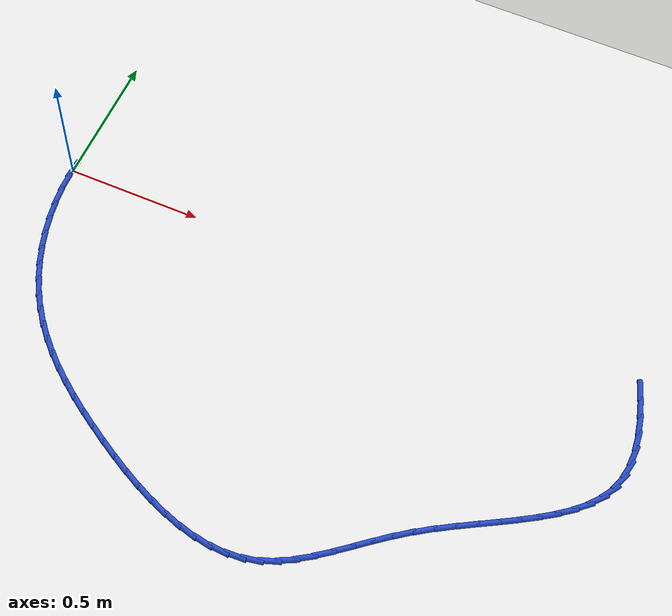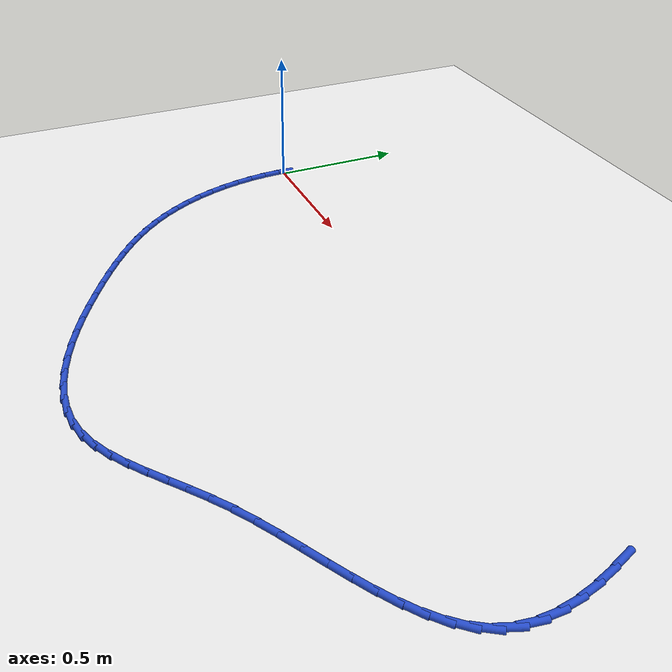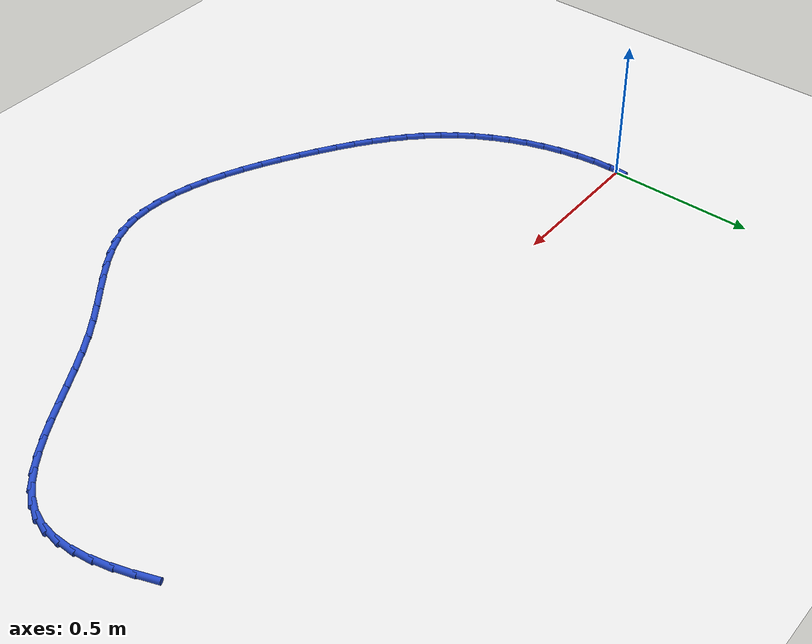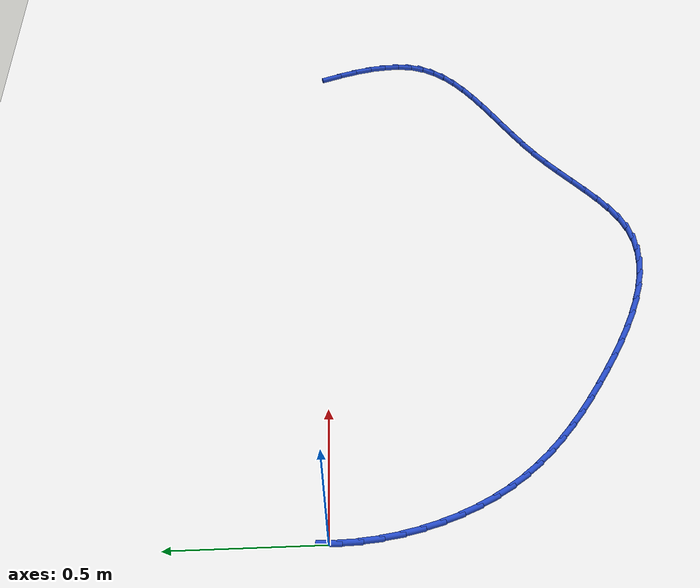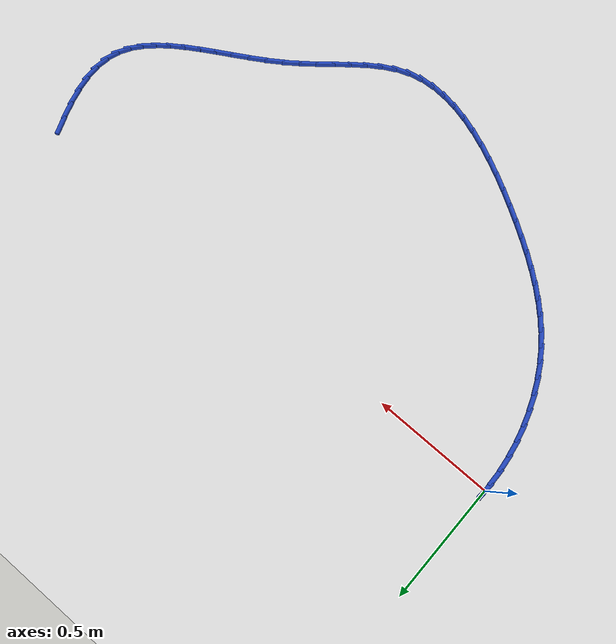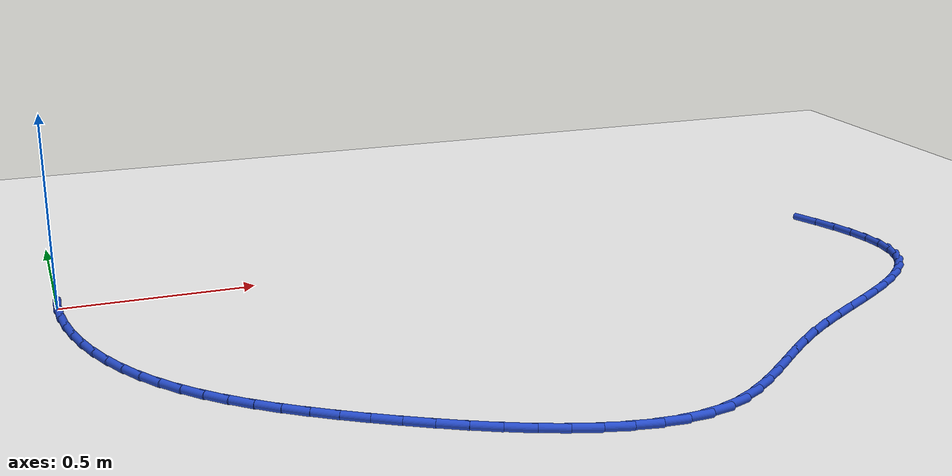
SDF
<sdf version="1.6">
 <world name="default">
  <model name="ground_plane">
   <static>1</static>
   <link name="link">
    <collision name="collision">
     <geometry><plane><normal>0 0 1</normal><size>100 100</size></plane></geometry>
     <surface><friction><ode><mu>100</mu><mu2>50</mu2></ode></friction></surface>
    </collision>
    <visual name="visual">
     <cast_shadows>0</cast_shadows>
     <geometry><plane><normal>0 0 1</normal><size>100 100</size></plane></geometry>
     <material>
      <script><uri>file://media/materials/scripts/gazebo.material</uri><name>Gazebo/WhiteGlow</name></script>
     </material>
    </visual>
   </link>
  </model>
  <model name="line">
   <link name="link_0">
    <pose>-3.122502256758253e-17 -4.163336342344337e-17 0.01 0 1.57 1.5230934056783816</pose>
    <collision name="collision">
     <geometry><cylinder><radius>0.01</radius><length>0.08</length></cylinder></geometry>
    </collision>
    <visual name="visual">
     <material>
      <script><name>Gazebo/Blue</name><uri>file://media/materials/scripts/gazebo.material</uri></script>
     </material>
     <geometry><cylinder><radius>0.01</radius><length>0.08</length></cylinder></geometry>
    </visual>
   </link>
   <link name="link_55">
    <pose>2.1920932714726185 -0.012998556710253323 0.01 0 1.57 -1.2213491102728755</pose>
    <collision name="collision">
     <geometry><cylinder><radius>0.01</radius><length>0.08</length></cylinder></geometry>
    </collision>
    <visual name="visual">
     <material>
      <script><name>Gazebo/Blue</name><uri>file://media/materials/scripts/gazebo.material</uri></script>
     </material>
     <geometry><cylinder><radius>0.01</radius><length>0.08</length></cylinder></geometry>
    </visual>
   </link>
   <link name="link_56">
    <pose>2.2150106348134755 -0.07588885896064891 0.01 0 1.57 -1.277937678296772</pose>
    <collision name="collision">
     <geometry><cylinder><radius>0.01</radius><length>0.08</length></cylinder></geometry>
    </collision>
    <visual name="visual">
     <material>
      <script><name>Gazebo/Blue</name><uri>file://media/materials/scripts/gazebo.material</uri></script>
     </material>
     <geometry><cylinder><radius>0.01</radius><length>0.08</length></cylinder></geometry>
    </visual>
   </link>
   <link name="link_57">
    <pose>2.2335138346364487 -0.13725350512756754 0.01 0 1.57 -1.3535788627433354</pose>
    <collision name="collision">
     <geometry><cylinder><radius>0.01</radius><length>0.08</length></cylinder></geometry>
    </collision>
    <visual name="visual">
     <material>
      <script><name>Gazebo/Blue</name><uri>file://media/materials/scripts/gazebo.material</uri></script>
     </material>
     <geometry><cylinder><radius>0.01</radius><length>0.08</length></cylinder></geometry>
    </visual>
   </link>
   <link name="link_58">
    <pose>2.2466319026974517 -0.19669208541015873 0.01 0 1.57 -1.45294680043807</pose>
    <collision name="collision">
     <geometry><cylinder><radius>0.01</radius><length>0.08</length></cylinder></geometry>
    </collision>
    <visual name="visual">
     <material>
      <script><name>Gazebo/Blue</name><uri>file://media/materials/scripts/gazebo.material</uri></script>
     </material>
     <geometry><cylinder><radius>0.01</radius><length>0.08</length></cylinder></geometry>
    </visual>
   </link>
   <link name="link_59">
    <pose>2.253393870752396 -0.25380419000757487 0.01 0 1.57 1.56040600625471</pose>
    <collision name="collision">
     <geometry><cylinder><radius>0.01</radius><length>0.08</length></cylinder></geometry>
    </collision>
    <visual name="visual">
     <material>
      <script><name>Gazebo/Blue</name><uri>file://media/materials/scripts/gazebo.material</uri></script>
     </material>
     <geometry><cylinder><radius>0.01</radius><length>0.08</length></cylinder></geometry>
    </visual>
   </link>
   <link name="link_60">
    <pose>2.252828770557195 -0.30818940911896586 0.01 0 1.57 1.399576828015732</pose>
    <collision name="collision">
     <geometry><cylinder><radius>0.01</radius><length>0.08</length></cylinder></geometry>
    </collision>
    <visual name="visual">
     <material>
      <script><name>Gazebo/Blue</name><uri>file://media/materials/scripts/gazebo.material</uri></script>
     </material>
     <geometry><cylinder><radius>0.01</radius><length>0.08</length></cylinder></geometry>
    </visual>
   </link>
   <link name="link_61">
    <pose>2.24396563386776 -0.35944733294348413 0.01 0 1.57 1.208278922790613</pose>
    <collision name="collision">
     <geometry><cylinder><radius>0.01</radius><length>0.08</length></cylinder></geometry>
    </collision>
    <visual name="visual">
     <material>
      <script><name>Gazebo/Blue</name><uri>file://media/materials/scripts/gazebo.material</uri></script>
     </material>
     <geometry><cylinder><radius>0.01</radius><length>0.08</length></cylinder></geometry>
    </visual>
   </link>
   <link name="link_62">
    <pose>2.2258582743932536 -0.40718878022864263 0.01 0 1.57 1.0163197726736692</pose>
    <collision name="collision">
     <geometry><cylinder><radius>0.01</radius><length>0.08</length></cylinder></geometry>
    </collision>
    <visual name="visual">
     <material>
      <script><name>Gazebo/Blue</name><uri>file://media/materials/scripts/gazebo.material</uri></script>
     </material>
     <geometry><cylinder><radius>0.01</radius><length>0.08</length></cylinder></geometry>
    </visual>
   </link>
   <link name="link_63">
    <pose>2.198459367536874 -0.4514318383460809 0.01 0 1.57 0.8590061408410937</pose>
    <collision name="collision">
     <geometry><cylinder><radius>0.01</radius><length>0.08</length></cylinder></geometry>
    </collision>
    <visual name="visual">
     <material>
      <script><name>Gazebo/Blue</name><uri>file://media/materials/scripts/gazebo.material</uri></script>
     </material>
     <geometry><cylinder><radius>0.01</radius><length>0.08</length></cylinder></geometry>
    </visual>
   </link>
   <link name="link_64">
    <pose>2.1628532205838575 -0.4927073300111155 0.01 0 1.57 0.7389992290523295</pose>
    <collision name="collision">
     <geometry><cylinder><radius>0.01</radius><length>0.08</length></cylinder></geometry>
    </collision>
    <visual name="visual">
     <material>
      <script><name>Gazebo/Blue</name><uri>file://media/materials/scripts/gazebo.material</uri></script>
     </material>
     <geometry><cylinder><radius>0.01</radius><length>0.08</length></cylinder></geometry>
    </visual>
   </link>
   <link name="link_65">
    <pose>2.120196252109316 -0.5315787511144895 0.01 0 1.57 0.6515890013540918</pose>
    <collision name="collision">
     <geometry><cylinder><radius>0.01</radius><length>0.08</length></cylinder></geometry>
    </collision>
    <visual name="visual">
     <material>
      <script><name>Gazebo/Blue</name><uri>file://media/materials/scripts/gazebo.material</uri></script>
     </material>
     <geometry><cylinder><radius>0.01</radius><length>0.08</length></cylinder></geometry>
    </visual>
   </link>
   <link name="link_66">
    <pose>2.07164488068836 -0.5686095975469454 0.01 0 1.57 0.5909527391026916</pose>
    <collision name="collision">
     <geometry><cylinder><radius>0.01</radius><length>0.08</length></cylinder></geometry>
    </collision>
    <visual name="visual">
     <material>
      <script><name>Gazebo/Blue</name><uri>file://media/materials/scripts/gazebo.material</uri></script>
     </material>
     <geometry><cylinder><radius>0.01</radius><length>0.08</length></cylinder></geometry>
    </visual>
   </link>
   <link name="link_67">
    <pose>2.0183555248961036 -0.6043633651992248 0.01 0 1.57 0.55219931903151</pose>
    <collision name="collision">
     <geometry><cylinder><radius>0.01</radius><length>0.08</length></cylinder></geometry>
    </collision>
    <visual name="visual">
     <material>
      <script><name>Gazebo/Blue</name><uri>file://media/materials/scripts/gazebo.material</uri></script>
     </material>
     <geometry><cylinder><radius>0.01</radius><length>0.08</length></cylinder></geometry>
    </visual>
   </link>
   <link name="link_68">
    <pose>1.9614846033076565 -0.6394035499620712 0.01 0 1.57 0.5318500674002351</pose>
    <collision name="collision">
     <geometry><cylinder><radius>0.01</radius><length>0.08</length></cylinder></geometry>
    </collision>
    <visual name="visual">
     <material>
      <script><name>Gazebo/Blue</name><uri>file://media/materials/scripts/gazebo.material</uri></script>
     </material>
     <geometry><cylinder><radius>0.01</radius><length>0.08</length></cylinder></geometry>
    </visual>
   </link>
   <link name="link_69">
    <pose>1.9021885344981326 -0.6742936477262257 0.01 0 1.57 0.5277545987225699</pose>
    <collision name="collision">
     <geometry><cylinder><radius>0.01</radius><length>0.08</length></cylinder></geometry>
    </collision>
    <visual name="visual">
     <material>
      <script><name>Gazebo/Blue</name><uri>file://media/materials/scripts/gazebo.material</uri></script>
     </material>
     <geometry><cylinder><radius>0.01</radius><length>0.08</length></cylinder></geometry>
    </visual>
   </link>
   <link name="link_70">
    <pose>1.8416237370426416 -0.7095971543824318 0.01 0 1.57 0.5388929985048572</pose>
    <collision name="collision">
     <geometry><cylinder><radius>0.01</radius><length>0.08</length></cylinder></geometry>
    </collision>
    <visual name="visual">
     <material>
      <script><name>Gazebo/Blue</name><uri>file://media/materials/scripts/gazebo.material</uri></script>
     </material>
     <geometry><cylinder><radius>0.01</radius><length>0.08</length></cylinder></geometry>
    </visual>
   </link>
   <link name="link_71">
    <pose>1.7809466295162983 -0.7458775658214312 0.01 0 1.57 0.5652064135438107</pose>
    <collision name="collision">
     <geometry><cylinder><radius>0.01</radius><length>0.08</length></cylinder></geometry>
    </collision>
    <visual name="visual">
     <material>
      <script><name>Gazebo/Blue</name><uri>file://media/materials/scripts/gazebo.material</uri></script>
     </material>
     <geometry><cylinder><radius>0.01</radius><length>0.08</length></cylinder></geometry>
    </visual>
   </link>
   <link name="link_72">
    <pose>1.7213136304942118 -0.7836983779339667 0.01 0 1.57 0.6074172134233449</pose>
    <collision name="collision">
     <geometry><cylinder><radius>0.01</radius><length>0.08</length></cylinder></geometry>
    </collision>
    <visual name="visual">
     <material>
      <script><name>Gazebo/Blue</name><uri>file://media/materials/scripts/gazebo.material</uri></script>
     </material>
     <geometry><cylinder><radius>0.01</radius><length>0.08</length></cylinder></geometry>
    </visual>
   </link>
   <link name="link_73">
    <pose>1.663878602290397 -0.8236203940341268 0.01 0 1.57 0.6559280965833054</pose>
    <collision name="collision">
     <geometry><cylinder><radius>0.01</radius><length>0.08</length></cylinder></geometry>
    </collision>
    <visual name="visual">
     <material>
      <script><name>Gazebo/Blue</name><uri>file://media/materials/scripts/gazebo.material</uri></script>
     </material>
     <geometry><cylinder><radius>0.01</radius><length>0.08</length></cylinder></geometry>
    </visual>
   </link>
   <link name="link_74">
    <pose>1.609267931439026 -0.865648813405336 0.01 0 1.57 0.686787631881382</pose>
    <collision name="collision">
     <geometry><cylinder><radius>0.01</radius><length>0.08</length></cylinder></geometry>
    </collision>
    <visual name="visual">
     <material>
      <script><name>Gazebo/Blue</name><uri>file://media/materials/scripts/gazebo.material</uri></script>
     </material>
     <geometry><cylinder><radius>0.01</radius><length>0.08</length></cylinder></geometry>
    </visual>
   </link>
   <link name="link_75">
    <pose>1.556938155429121 -0.9085566027440454 0.01 0 1.57 0.6959377091041713</pose>
    <collision name="collision">
     <geometry><cylinder><radius>0.01</radius><length>0.08</length></cylinder></geometry>
    </collision>
    <visual name="visual">
     <material>
      <script><name>Gazebo/Blue</name><uri>file://media/materials/scripts/gazebo.material</uri></script>
     </material>
     <geometry><cylinder><radius>0.01</radius><length>0.08</length></cylinder></geometry>
    </visual>
   </link>
   <link name="link_76">
    <pose>1.506188605653579 -0.9509511394552382 0.01 0 1.57 0.6819455480794335</pose>
    <collision name="collision">
     <geometry><cylinder><radius>0.01</radius><length>0.08</length></cylinder></geometry>
    </collision>
    <visual name="visual">
     <material>
      <script><name>Gazebo/Blue</name><uri>file://media/materials/scripts/gazebo.material</uri></script>
     </material>
     <geometry><cylinder><radius>0.01</radius><length>0.08</length></cylinder></geometry>
    </visual>
   </link>
   <link name="link_77">
    <pose>1.456318613505298 -0.9914398009438952 0.01 0 1.57 0.6424936339955105</pose>
    <collision name="collision">
     <geometry><cylinder><radius>0.01</radius><length>0.08</length></cylinder></geometry>
    </collision>
    <visual name="visual">
     <material>
      <script><name>Gazebo/Blue</name><uri>file://media/materials/scripts/gazebo.material</uri></script>
     </material>
     <geometry><cylinder><radius>0.01</radius><length>0.08</length></cylinder></geometry>
    </visual>
   </link>
   <link name="link_78">
    <pose>1.4066275103771748 -1.028629964614999 0.01 0 1.57 0.574422099214387</pose>
    <collision name="collision">
     <geometry><cylinder><radius>0.01</radius><length>0.08</length></cylinder></geometry>
    </collision>
    <visual name="visual">
     <material>
      <script><name>Gazebo/Blue</name><uri>file://media/materials/scripts/gazebo.material</uri></script>
     </material>
     <geometry><cylinder><radius>0.01</radius><length>0.08</length></cylinder></geometry>
    </visual>
   </link>
   <link name="link_79">
    <pose>1.3564146276621074 -1.0611290078735303 0.01 0 1.57 0.4744393098574031</pose>
    <collision name="collision">
     <geometry><cylinder><radius>0.01</radius><length>0.08</length></cylinder></geometry>
    </collision>
    <visual name="visual">
     <material>
      <script><name>Gazebo/Blue</name><uri>file://media/materials/scripts/gazebo.material</uri></script>
     </material>
     <geometry><cylinder><radius>0.01</radius><length>0.08</length></cylinder></geometry>
    </visual>
   </link>
   <link name="link_80">
    <pose>1.304979296752993 -1.0875443081244722 0.01 0 1.57 0.34107491319650834</pose>
    <collision name="collision">
     <geometry><cylinder><radius>0.01</radius><length>0.08</length></cylinder></geometry>
    </collision>
    <visual name="visual">
     <material>
      <script><name>Gazebo/Blue</name><uri>file://media/materials/scripts/gazebo.material</uri></script>
     </material>
     <geometry><cylinder><radius>0.01</radius><length>0.08</length></cylinder></geometry>
    </visual>
   </link>
   <link name="link_81">
    <pose>1.2516210542154984 -1.1064836431865575 0.01 0 1.57 0.1870605033914542</pose>
    <collision name="collision">
     <geometry><cylinder><radius>0.01</radius><length>0.08</length></cylinder></geometry>
    </collision>
    <visual name="visual">
     <material>
      <script><name>Gazebo/Blue</name><uri>file://media/materials/scripts/gazebo.material</uri></script>
     </material>
     <geometry><cylinder><radius>0.01</radius><length>0.08</length></cylinder></geometry>
    </visual>
   </link>
   <link name="link_82">
    <pose>1.1958845147645043 -1.1170330836951814 0.01 0 1.57 0.04578573719547564</pose>
    <collision name="collision">
     <geometry><cylinder><radius>0.01</radius><length>0.08</length></cylinder></geometry>
    </collision>
    <visual name="visual">
     <material>
      <script><name>Gazebo/Blue</name><uri>file://media/materials/scripts/gazebo.material</uri></script>
     </material>
     <geometry><cylinder><radius>0.01</radius><length>0.08</length></cylinder></geometry>
    </visual>
   </link>
   <link name="link_83">
    <pose>1.1380341949197172 -1.1196836556563063 0.01 0 1.57 -0.07541083208579909</pose>
    <collision name="collision">
     <geometry><cylinder><radius>0.01</radius><length>0.08</length></cylinder></geometry>
    </collision>
    <visual name="visual">
     <material>
      <script><name>Gazebo/Blue</name><uri>file://media/materials/scripts/gazebo.material</uri></script>
     </material>
     <geometry><cylinder><radius>0.01</radius><length>0.08</length></cylinder></geometry>
    </visual>
   </link>
   <link name="link_84">
    <pose>1.0784661233242683 -1.115183043224073 0.01 0 1.57 -0.1772011625813653</pose>
    <collision name="collision">
     <geometry><cylinder><radius>0.01</radius><length>0.08</length></cylinder></geometry>
    </collision>
    <visual name="visual">
     <material>
      <script><name>Gazebo/Blue</name><uri>file://media/materials/scripts/gazebo.material</uri></script>
     </material>
     <geometry><cylinder><radius>0.01</radius><length>0.08</length></cylinder></geometry>
    </visual>
   </link>
   <link name="link_85">
    <pose>1.0175763286212858 -1.1042789305526233 0.01 0 1.57 -0.2617468368065026</pose>
    <collision name="collision">
     <geometry><cylinder><radius>0.01</radius><length>0.08</length></cylinder></geometry>
    </collision>
    <visual name="visual">
     <material>
      <script><name>Gazebo/Blue</name><uri>file://media/materials/scripts/gazebo.material</uri></script>
     </material>
     <geometry><cylinder><radius>0.01</radius><length>0.08</length></cylinder></geometry>
    </visual>
   </link>
   <link name="link_86">
    <pose>0.9557608394539012 -1.087719001796099 0.01 0 1.57 -0.3316254960242138</pose>
    <collision name="collision">
     <geometry><cylinder><radius>0.01</radius><length>0.08</length></cylinder></geometry>
    </collision>
    <visual name="visual">
     <material>
      <script><name>Gazebo/Blue</name><uri>file://media/materials/scripts/gazebo.material</uri></script>
     </material>
     <geometry><cylinder><radius>0.01</radius><length>0.08</length></cylinder></geometry>
    </visual>
   </link>
   <link name="link_87">
    <pose>0.8934156844652423 -1.0662509411086398 0.01 0 1.57 -0.38926443566141944</pose>
    <collision name="collision">
     <geometry><cylinder><radius>0.01</radius><length>0.08</length></cylinder></geometry>
    </collision>
    <visual name="visual">
     <material>
      <script><name>Gazebo/Blue</name><uri>file://media/materials/scripts/gazebo.material</uri></script>
     </material>
     <geometry><cylinder><radius>0.01</radius><length>0.08</length></cylinder></geometry>
    </visual>
   </link>
   <link name="link_88">
    <pose>0.8309368922984403 -1.0406224326443887 0.01 0 1.57 -0.4367189092082508</pose>
    <collision name="collision">
     <geometry><cylinder><radius>0.01</radius><length>0.08</length></cylinder></geometry>
    </collision>
    <visual name="visual">
     <material>
      <script><name>Gazebo/Blue</name><uri>file://media/materials/scripts/gazebo.material</uri></script>
     </material>
     <geometry><cylinder><radius>0.01</radius><length>0.08</length></cylinder></geometry>
    </visual>
   </link>
   <link name="link_89">
    <pose>0.7687204915966235 -1.011581160557486 0.01 0 1.57 -0.47562672083812335</pose>
    <collision name="collision">
     <geometry><cylinder><radius>0.01</radius><length>0.08</length></cylinder></geometry>
    </collision>
    <visual name="visual">
     <material>
      <script><name>Gazebo/Blue</name><uri>file://media/materials/scripts/gazebo.material</uri></script>
     </material>
     <geometry><cylinder><radius>0.01</radius><length>0.08</length></cylinder></geometry>
    </visual>
   </link>
   <link name="link_90">
    <pose>0.7071625110029233 -0.9798748090020741 0.01 0 1.57 -0.5072333006386717</pose>
    <collision name="collision">
     <geometry><cylinder><radius>0.01</radius><length>0.08</length></cylinder></geometry>
    </collision>
    <visual name="visual">
     <material>
      <script><name>Gazebo/Blue</name><uri>file://media/materials/scripts/gazebo.material</uri></script>
     </material>
     <geometry><cylinder><radius>0.01</radius><length>0.08</length></cylinder></geometry>
    </visual>
   </link>
   <link name="link_91">
    <pose>0.6466589791604677 -0.946251062132293 0.01 0 1.57 -0.5324329117563822</pose>
    <collision name="collision">
     <geometry><cylinder><radius>0.01</radius><length>0.08</length></cylinder></geometry>
    </collision>
    <visual name="visual">
     <material>
      <script><name>Gazebo/Blue</name><uri>file://media/materials/scripts/gazebo.material</uri></script>
     </material>
     <geometry><cylinder><radius>0.01</radius><length>0.08</length></cylinder></geometry>
    </visual>
   </link>
   <link name="link_92">
    <pose>0.5876059247123878 -0.9114576041022852 0.01 0 1.57 -0.5534619388109585</pose>
    <collision name="collision">
     <geometry><cylinder><radius>0.01</radius><length>0.08</length></cylinder></geometry>
    </collision>
    <visual name="visual">
     <material>
      <script><name>Gazebo/Blue</name><uri>file://media/materials/scripts/gazebo.material</uri></script>
     </material>
     <geometry><cylinder><radius>0.01</radius><length>0.08</length></cylinder></geometry>
    </visual>
   </link>
   <link name="link_93">
    <pose>0.5303671453670858 -0.8760909850335552 0.01 0 1.57 -0.5784412698847982</pose>
    <collision name="collision">
     <geometry><cylinder><radius>0.01</radius><length>0.08</length></cylinder></geometry>
    </collision>
    <visual name="visual">
     <material>
      <script><name>Gazebo/Blue</name><uri>file://media/materials/scripts/gazebo.material</uri></script>
     </material>
     <geometry><cylinder><radius>0.01</radius><length>0.08</length></cylinder></geometry>
    </visual>
   </link>
   <link name="link_94">
    <pose>0.47515573403288547 -0.8400410853724256 0.01 0 1.57 -0.609955845494161</pose>
    <collision name="collision">
     <geometry><cylinder><radius>0.01</radius><length>0.08</length></cylinder></geometry>
    </collision>
    <visual name="visual">
     <material>
      <script><name>Gazebo/Blue</name><uri>file://media/materials/scripts/gazebo.material</uri></script>
     </material>
     <geometry><cylinder><radius>0.01</radius><length>0.08</length></cylinder></geometry>
    </visual>
   </link>
   <link name="link_95">
    <pose>0.42214077247529086 -0.8029914129746832 0.01 0 1.57 -0.6482714959589111</pose>
    <collision name="collision">
     <geometry><cylinder><radius>0.01</radius><length>0.08</length></cylinder></geometry>
    </collision>
    <visual name="visual">
     <material>
      <script><name>Gazebo/Blue</name><uri>file://media/materials/scripts/gazebo.material</uri></script>
     </material>
     <geometry><cylinder><radius>0.01</radius><length>0.08</length></cylinder></geometry>
    </visual>
   </link>
   <link name="link_96">
    <pose>0.3714913371557093 -0.7646254508246709 0.01 0 1.57 -0.6935482419440677</pose>
    <collision name="collision">
     <geometry><cylinder><radius>0.01</radius><length>0.08</length></cylinder></geometry>
    </collision>
    <visual name="visual">
     <material>
      <script><name>Gazebo/Blue</name><uri>file://media/materials/scripts/gazebo.material</uri></script>
     </material>
     <geometry><cylinder><radius>0.01</radius><length>0.08</length></cylinder></geometry>
    </visual>
   </link>
   <link name="link_97">
    <pose>0.3233765045355468 -0.7246266819067307 0.01 0 1.57 -0.7457773035398159</pose>
    <collision name="collision">
     <geometry><cylinder><radius>0.01</radius><length>0.08</length></cylinder></geometry>
    </collision>
    <visual name="visual">
     <material>
      <script><name>Gazebo/Blue</name><uri>file://media/materials/scripts/gazebo.material</uri></script>
     </material>
     <geometry><cylinder><radius>0.01</radius><length>0.08</length></cylinder></geometry>
    </visual>
   </link>
   <link name="link_98">
    <pose>0.27796535107620873 -0.6826785892052049 0.01 0 1.57 -0.8047097754560444</pose>
    <collision name="collision">
     <geometry><cylinder><radius>0.01</radius><length>0.08</length></cylinder></geometry>
    </collision>
    <visual name="visual">
     <material>
      <script><name>Gazebo/Blue</name><uri>file://media/materials/scripts/gazebo.material</uri></script>
     </material>
     <geometry><cylinder><radius>0.01</radius><length>0.08</length></cylinder></geometry>
    </visual>
   </link>
   <link name="link_99">
    <pose>0.23542695323910254 -0.6384646557044363 0.01 0 1.57 -0.8697897131612145</pose>
    <collision name="collision">
     <geometry><cylinder><radius>0.01</radius><length>0.08</length></cylinder></geometry>
    </collision>
    <visual name="visual">
     <material>
      <script><name>Gazebo/Blue</name><uri>file://media/materials/scripts/gazebo.material</uri></script>
     </material>
     <geometry><cylinder><radius>0.01</radius><length>0.08</length></cylinder></geometry>
    </visual>
   </link>
   <link name="link_100">
    <pose>0.1959303874856335 -0.5916683643887669 0.01 0 1.57 -0.9401111197962504</pose>
    <collision name="collision">
     <geometry><cylinder><radius>0.01</radius><length>0.08</length></cylinder></geometry>
    </collision>
    <visual name="visual">
     <material>
      <script><name>Gazebo/Blue</name><uri>file://media/materials/scripts/gazebo.material</uri></script>
     </material>
     <geometry><cylinder><radius>0.01</radius><length>0.08</length></cylinder></geometry>
    </visual>
   </link>
   <link name="link_101">
    <pose>0.1596447302772088 -0.5419731982425402 0.01 0 1.57 -1.0133712322749604</pose>
    <collision name="collision">
     <geometry><cylinder><radius>0.01</radius><length>0.08</length></cylinder></geometry>
    </collision>
    <visual name="visual">
     <material>
      <script><name>Gazebo/Blue</name><uri>file://media/materials/scripts/gazebo.material</uri></script>
     </material>
     <geometry><cylinder><radius>0.01</radius><length>0.08</length></cylinder></geometry>
    </visual>
   </link>
   <link name="link_102">
    <pose>0.12673207376368842 -0.4891751064407707 0.01 0 1.57 -1.0844230765098009</pose>
    <collision name="collision">
     <geometry><cylinder><radius>0.01</radius><length>0.08</length></cylinder></geometry>
    </collision>
    <visual name="visual">
     <material>
      <script><name>Gazebo/Blue</name><uri>file://media/materials/scripts/gazebo.material</uri></script>
     </material>
     <geometry><cylinder><radius>0.01</radius><length>0.08</length></cylinder></geometry>
    </visual>
   </link>
   <link name="link_103">
    <pose>0.09732430771853627 -0.4335563776066406 0.01 0 1.57 -1.1527163243902634</pose>
    <collision name="collision">
     <geometry><cylinder><radius>0.01</radius><length>0.08</length></cylinder></geometry>
    </collision>
    <visual name="visual">
     <material>
      <script><name>Gazebo/Blue</name><uri>file://media/materials/scripts/gazebo.material</uri></script>
     </material>
     <geometry><cylinder><radius>0.01</radius><length>0.08</length></cylinder></geometry>
    </visual>
   </link>
   <link name="link_104">
    <pose>0.07154515986677742 -0.3755307312838809 0.01 0 1.57 -1.2190593940963854</pose>
    <collision name="collision">
     <geometry><cylinder><radius>0.01</radius><length>0.08</length></cylinder></geometry>
    </collision>
    <visual name="visual">
     <material>
      <script><name>Gazebo/Blue</name><uri>file://media/materials/scripts/gazebo.material</uri></script>
     </material>
     <geometry><cylinder><radius>0.01</radius><length>0.08</length></cylinder></geometry>
    </visual>
   </link>
   <link name="link_105">
    <pose>0.049518357800957286 -0.31551188914952666 0.01 0 1.57 -1.284243264775506</pose>
    <collision name="collision">
     <geometry><cylinder><radius>0.01</radius><length>0.08</length></cylinder></geometry>
    </collision>
    <visual name="visual">
     <material>
      <script><name>Gazebo/Blue</name><uri>file://media/materials/scripts/gazebo.material</uri></script>
     </material>
     <geometry><cylinder><radius>0.01</radius><length>0.08</length></cylinder></geometry>
    </visual>
   </link>
   <link name="link_106">
    <pose>0.03136762911362014 -0.25391357288061 0.01 0 1.57 -1.3490419584613906</pose>
    <collision name="collision">
     <geometry><cylinder><radius>0.01</radius><length>0.08</length></cylinder></geometry>
    </collision>
    <visual name="visual">
     <material>
      <script><name>Gazebo/Blue</name><uri>file://media/materials/scripts/gazebo.material</uri></script>
     </material>
     <geometry><cylinder><radius>0.01</radius><length>0.08</length></cylinder></geometry>
    </visual>
   </link>
   <link name="link_107">
    <pose>0.017216701397311192 -0.19114950415416604 0.01 0 1.57 -1.4142168565440076</pose>
    <collision name="collision">
     <geometry><cylinder><radius>0.01</radius><length>0.08</length></cylinder></geometry>
    </collision>
    <visual name="visual">
     <material>
      <script><name>Gazebo/Blue</name><uri>file://media/materials/scripts/gazebo.material</uri></script>
     </material>
     <geometry><cylinder><radius>0.01</radius><length>0.08</length></cylinder></geometry>
    </visual>
   </link>
   <link name="link_108">
    <pose>0.00718930224457489 -0.1276334046472268 0.01 0 1.57 -1.4805217034521203</pose>
    <collision name="collision">
     <geometry><cylinder><radius>0.01</radius><length>0.08</length></cylinder></geometry>
    </collision>
    <visual name="visual">
     <material>
      <script><name>Gazebo/Blue</name><uri>file://media/materials/scripts/gazebo.material</uri></script>
     </material>
     <geometry><cylinder><radius>0.01</radius><length>0.08</length></cylinder></geometry>
    </visual>
   </link>
   <link name="link_109">
    <pose>0.0014091592479562563 -0.06377899603682737 0.01 0 1.57 -1.5487055115911939</pose>
    <collision name="collision">
     <geometry><cylinder><radius>0.01</radius><length>0.08</length></cylinder></geometry>
    </collision>
    <visual name="visual">
     <material>
      <script><name>Gazebo/Blue</name><uri>file://media/materials/scripts/gazebo.material</uri></script>
     </material>
     <geometry><cylinder><radius>0.01</radius><length>0.08</length></cylinder></geometry>
    </visual>
   </link>
  </model>
 </world>
</sdf>
